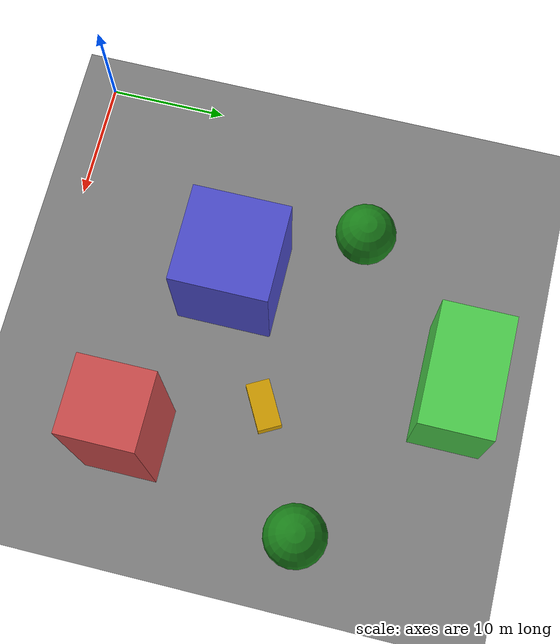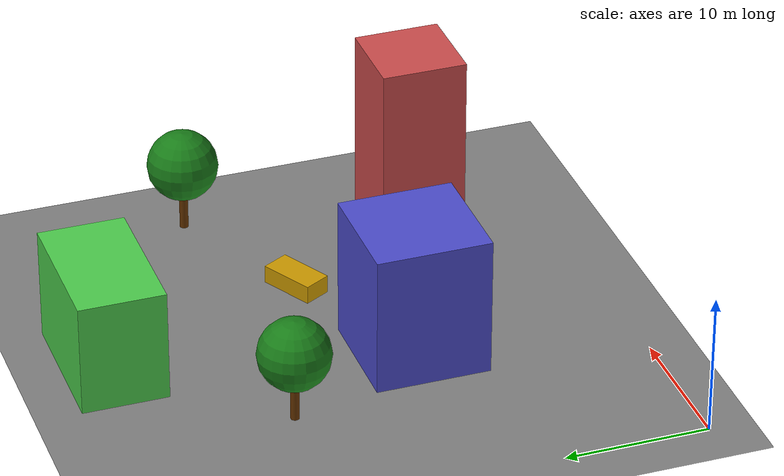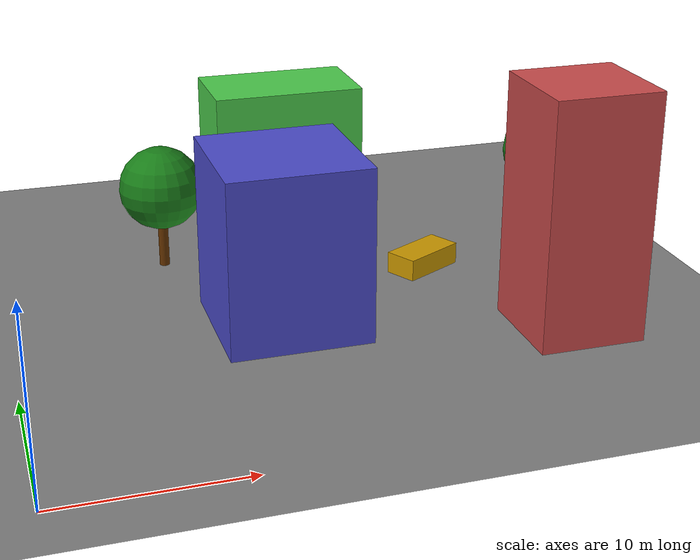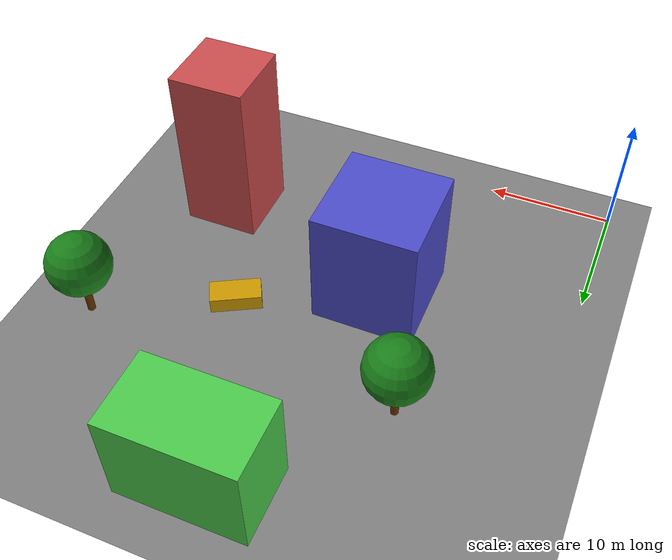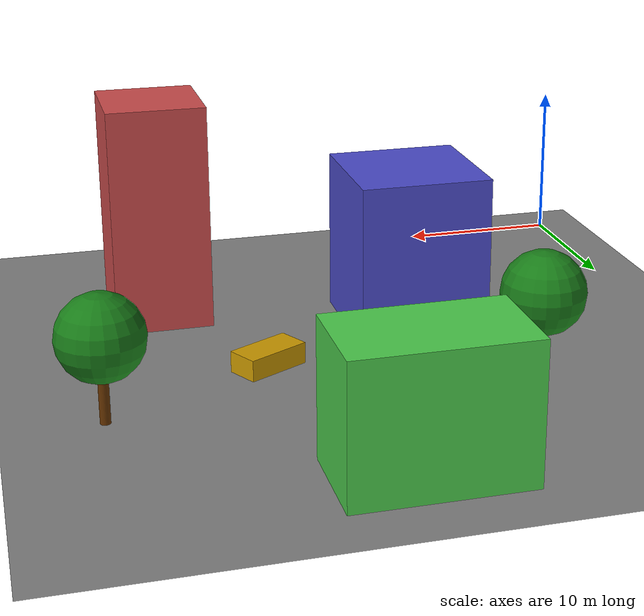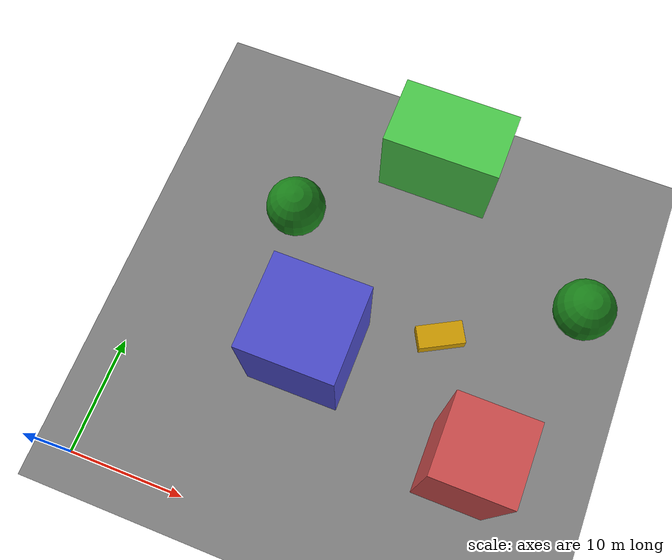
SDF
<?xml version="1.0" encoding="UTF-8"?>
<sdf version="1.9">
  <world name="urban">
    <physics type="ode">
      <max_step_size>0.004</max_step_size>
      <real_time_factor>1.0</real_time_factor>
      <real_time_update_rate>250</real_time_update_rate>
    </physics>
    <gravity>0 0 -9.8</gravity>
    <magnetic_field>6e-06 2.3e-05 -4.2e-05</magnetic_field>
    <atmosphere type="adiabatic"/>
    <scene>
      <grid>false</grid>
      <ambient>0.4 0.4 0.4 1</ambient>
      <background>0.7 0.7 0.7 1</background>
      <shadows>true</shadows>
    </scene>

    <!-- Ground plane -->
    <model name="ground_plane">
      <static>true</static>
      <link name="link">
        <collision name="collision">
          <geometry>
            <plane>
              <normal>0 0 1</normal>
              <size>500 500</size>
            </plane>
          </geometry>
        </collision>
        <visual name="visual">
          <geometry>
            <plane>
              <normal>0 0 1</normal>
              <size>500 500</size>
            </plane>
          </geometry>
          <material>
            <ambient>0.5 0.5 0.5 1</ambient>
            <diffuse>0.5 0.5 0.5 1</diffuse>
          </material>
        </visual>
      </link>
    </model>

    <!-- Edificio 1 -->
    <model name="building_1">
      <static>true</static>
      <pose>15 15 5 0 0 0</pose>
      <link name="link">
        <collision name="collision">
          <geometry><box><size>8 8 10</size></box></geometry>
        </collision>
        <visual name="visual">
          <geometry><box><size>8 8 10</size></box></geometry>
          <material>
            <ambient>0.3 0.3 0.8 1</ambient>
            <diffuse>0.3 0.3 0.8 1</diffuse>
          </material>
        </visual>
      </link>
    </model>

    <!-- Edificio 2 -->
    <model name="building_2">
      <static>true</static>
      <pose>30 10 7 0 0 0</pose>
      <link name="link">
        <collision name="collision">
          <geometry><box><size>6 6 14</size></box></geometry>
        </collision>
        <visual name="visual">
          <geometry><box><size>6 6 14</size></box></geometry>
          <material>
            <ambient>0.8 0.3 0.3 1</ambient>
            <diffuse>0.8 0.3 0.3 1</diffuse>
          </material>
        </visual>
      </link>
    </model>

    <!-- Edificio 3 -->
    <model name="building_3">
      <static>true</static>
      <pose>20 35 4 0 0 0</pose>
      <link name="link">
        <collision name="collision">
          <geometry><box><size>10 6 8</size></box></geometry>
        </collision>
        <visual name="visual">
          <geometry><box><size>10 6 8</size></box></geometry>
          <material>
            <ambient>0.3 0.8 0.3 1</ambient>
            <diffuse>0.3 0.8 0.3 1</diffuse>
          </material>
        </visual>
      </link>
    </model>

    <!-- Arbol 1 -->
    <model name="tree_1">
      <static>true</static>
      <pose>10 25 2 0 0 0</pose>
      <link name="link">
        <collision name="collision">
          <geometry><cylinder><radius>0.3</radius><length>4</length></cylinder></geometry>
        </collision>
        <visual name="trunk">
          <geometry><cylinder><radius>0.3</radius><length>4</length></cylinder></geometry>
          <material><ambient>0.4 0.2 0.0 1</ambient></material>
        </visual>
        <collision name="foliage_col">
          <pose>0 0 3 0 0 0</pose>
          <geometry><sphere><radius>2.5</radius></sphere></geometry>
        </collision>
        <visual name="foliage">
          <pose>0 0 3 0 0 0</pose>
          <geometry><sphere><radius>2.5</radius></sphere></geometry>
          <material><ambient>0.1 0.5 0.1 1</ambient></material>
        </visual>
      </link>
    </model>

    <!-- Arbol 2 -->
    <model name="tree_2">
      <static>true</static>
      <pose>35 25 2 0 0 0</pose>
      <link name="link">
        <collision name="collision">
          <geometry><cylinder><radius>0.3</radius><length>4</length></cylinder></geometry>
        </collision>
        <visual name="trunk">
          <geometry><cylinder><radius>0.3</radius><length>4</length></cylinder></geometry>
          <material><ambient>0.4 0.2 0.0 1</ambient></material>
        </visual>
        <collision name="foliage_col">
          <pose>0 0 3 0 0 0</pose>
          <geometry><sphere><radius>2.5</radius></sphere></geometry>
        </collision>
        <visual name="foliage">
          <pose>0 0 3 0 0 0</pose>
          <geometry><sphere><radius>2.5</radius></sphere></geometry>
          <material><ambient>0.1 0.5 0.1 1</ambient></material>
        </visual>
      </link>
    </model>

    <!-- Vehiculo 1 -->
    <model name="vehicle_1">
      <static>true</static>
      <pose>25 20 0.5 0 0 0.5</pose>
      <link name="link">
        <collision name="collision">
          <geometry><box><size>4 2 1.5</size></box></geometry>
        </collision>
        <visual name="visual">
          <geometry><box><size>4 2 1.5</size></box></geometry>
          <material>
            <ambient>0.8 0.6 0.0 1</ambient>
            <diffuse>0.8 0.6 0.0 1</diffuse>
          </material>
        </visual>
      </link>
    </model>

    <!-- Persona 1 -->
    <model name="person_1">
      <static>true</static>
      <pose>12 18 0.9 0 0 0</pose>
      <link name="link">
        <collision name="collision">
          <geometry><cylinder><radius>0.3</radius><length>1.8</length></cylinder></geometry>
        </collision>
        <visual name="visual">
          <geometry><cylinder><radius>0.3</radius><length>1.8</length></cylinder></geometry>
          <material><ambient>0.9 0.7 0.5 1</ambient></material>
        </visual>
      </link>
    </model>

    <!-- Sun -->
    <light name="sun" type="directional">
      <pose>0 0 100 0 0 0</pose>
      <diffuse>1 1 1 1</diffuse>
      <specular>0.5 0.5 0.5 1</specular>
      <direction>-0.5 0.1 -0.9</direction>
      <cast_shadows>true</cast_shadows>
    </light>

    <!-- PX4 plugins -->
    <plugin name="gz::sim::systems::Physics" filename="gz-sim-physics-system"/>
    <plugin name="gz::sim::systems::Sensors" filename="gz-sim-sensors-system">
      <render_engine>ogre2</render_engine>
    </plugin>
    <plugin name="gz::sim::systems::UserCommands" filename="gz-sim-user-commands-system"/>
    <plugin name="gz::sim::systems::SceneBroadcaster" filename="gz-sim-scene-broadcaster-system"/>

  </world>
</sdf>
